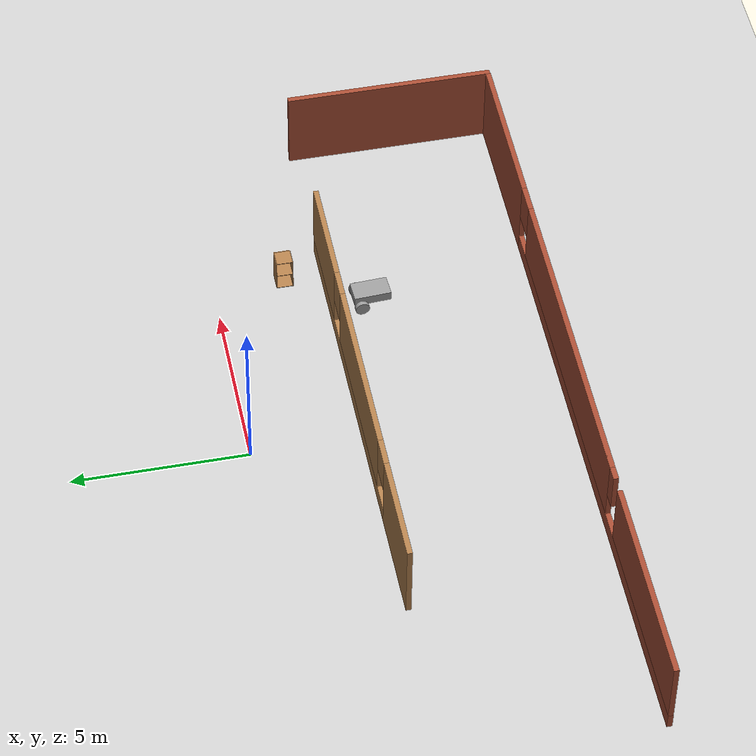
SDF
<sdf version="1.6">
 <world name="default">
  <model name="ground_plane">
   <static>1</static>
   <link name="link">
    <collision name="collision">
     <geometry><plane><normal>0 0 1</normal><size>100 100</size></plane></geometry>
     <surface>
      <contact><collide_bitmask>65535</collide_bitmask></contact>
      <friction><ode><mu>100</mu><mu2>50</mu2></ode></friction>
     </surface>
    </collision>
    <visual name="visual">
     <cast_shadows>0</cast_shadows>
     <geometry><plane><normal>0 0 1</normal><size>100 100</size></plane></geometry>
     <material>
      <script><uri>file://media/materials/scripts/gazebo.material</uri><name>Gazebo/Grey</name></script>
     </material>
    </visual>
   </link>
  </model>
  <model name="cart_0">
   <link name="link_0">
    <pose>0.000334 -0.065586 0.044669 0 -0 0</pose>
    <inertial>
     <mass>0.183478</mass>
     <inertia>
      <ixx>0.0186131</ixx>
      <ixy>0</ixy>
      <ixz>0</ixz>
      <iyy>0.00678768</iyy>
      <iyz>0</iyz>
      <izz>0.0228966</izz>
     </inertia>
    </inertial>
    <visual name="visual">
     <pose>0 0 0.2 0 -0 0</pose>
     <geometry><box><size>0.6017 1.06558 0.286166</size></box></geometry>
     <material>
      <lighting>1</lighting>
      <script><uri>file://media/materials/scripts/gazebo.material</uri><name>Gazebo/Grey</name></script>
      <shader type="pixel"><normal_map>__default__</normal_map></shader>
      <ambient>0.3 0.3 0.3 1</ambient>
      <diffuse>0.7 0.7 0.7 1</diffuse>
      <specular>0.01 0.01 0.01 1</specular>
      <emissive>0 0 0 1</emissive>
     </material>
    </visual>
    <collision name="collision">
     <pose>0 0 0.2 0 -0 0</pose>
     <geometry><box><size>0.6017 1.06558 0.286166</size></box></geometry>
     <surface>
      <friction>
       <ode><mu>1</mu><mu2>1</mu2><fdir1>0 0 0</fdir1><slip1>0</slip1><slip2>0</slip2></ode>
       <torsional>
        <coefficient>1</coefficient>
        <patch_radius>0</patch_radius>
        <surface_radius>0</surface_radius>
        <use_patch_radius>1</use_patch_radius>
        <ode><slip>0</slip></ode>
       </torsional>
      </friction>
      <bounce><restitution_coefficient>0</restitution_coefficient><threshold>1e+06</threshold></bounce>
      <contact>
       <collide_without_contact>0</collide_without_contact>
       <collide_without_contact_bitmask>1</collide_without_contact_bitmask>
       <collide_bitmask>1</collide_bitmask>
       <ode>
        <soft_cfm>0</soft_cfm>
        <soft_erp>0.2</soft_erp>
        <kp>1e+13</kp>
        <kd>1</kd>
        <max_vel>0.01</max_vel>
        <min_depth>0</min_depth>
       </ode>
       <bullet>
        <split_impulse>1</split_impulse>
        <split_impulse_penetration_threshold>-0.01</split_impulse_penetration_threshold>
        <soft_cfm>0</soft_cfm>
        <soft_erp>0.2</soft_erp>
        <kp>1e+13</kp>
        <kd>1</kd>
       </bullet>
      </contact>
     </surface>
    </collision>
   </link>
   <link name="link_1">
    <pose>-0.001 -0.462788 -0.129729 0 -0 0</pose>
    <inertial>
     <mass>1.886</mass>
     <inertia>
      <ixx>0.0115145</ixx>
      <ixy>0</ixy>
      <ixz>0</ixz>
      <iyy>0.0115145</iyy>
      <iyz>0</iyz>
      <izz>0.0115145</izz>
     </inertia>
     <pose>0 0 0.024704 0 -0 0</pose>
    </inertial>
    <visual name="visual">
     <pose>0 0 0.1 0 -0 0</pose>
     <geometry><sphere><radius>0.123544</radius></sphere></geometry>
     <material>
      <lighting>1</lighting>
      <script><uri>file://media/materials/scripts/gazebo.material</uri><name>Gazebo/Grey</name></script>
      <shader type="pixel"><normal_map>__default__</normal_map></shader>
      <ambient>0.3 0.3 0.3 1</ambient>
      <diffuse>0.7 0.7 0.7 1</diffuse>
      <specular>0.01 0.01 0.01 1</specular>
      <emissive>0 0 0 1</emissive>
     </material>
    </visual>
    <collision name="collision">
     <pose>0 0 0.1 0 -0 0</pose>
     <geometry><sphere><radius>0.123544</radius></sphere></geometry>
     <surface>
      <friction>
       <ode><mu>1</mu><mu2>1</mu2><fdir1>0 0 0</fdir1><slip1>0</slip1><slip2>0</slip2></ode>
       <torsional>
        <coefficient>1</coefficient>
        <patch_radius>0</patch_radius>
        <surface_radius>0</surface_radius>
        <use_patch_radius>1</use_patch_radius>
        <ode><slip>0</slip></ode>
       </torsional>
      </friction>
      <bounce><restitution_coefficient>0</restitution_coefficient><threshold>1e+06</threshold></bounce>
      <contact>
       <collide_without_contact>0</collide_without_contact>
       <collide_without_contact_bitmask>1</collide_without_contact_bitmask>
       <collide_bitmask>1</collide_bitmask>
       <ode>
        <soft_cfm>0</soft_cfm>
        <soft_erp>0.2</soft_erp>
        <kp>1e+13</kp>
        <kd>1</kd>
        <max_vel>0.01</max_vel>
        <min_depth>0</min_depth>
       </ode>
       <bullet>
        <split_impulse>1</split_impulse>
        <split_impulse_penetration_threshold>-0.01</split_impulse_penetration_threshold>
        <soft_cfm>0</soft_cfm>
        <soft_erp>0.2</soft_erp>
        <kp>1e+13</kp>
        <kd>1</kd>
       </bullet>
      </contact>
     </surface>
    </collision>
   </link>
   <link name="link_2">
    <pose>0.368986 0.26419 0.04253 3.14159 1.55999 3.14159</pose>
    <inertial>
     <mass>0.0216399</mass>
     <inertia>
      <ixx>0.000254029</ixx>
      <ixy>0</ixy>
      <ixz>0</ixz>
      <iyy>0.000254029</iyy>
      <iyz>0</iyz>
      <izz>0.000445951</izz>
     </inertia>
    </inertial>
    <visual name="visual">
     <geometry><cylinder><radius>0.203016</radius><length>0.131225</length></cylinder></geometry>
     <material>
      <lighting>1</lighting>
      <script><uri>file://media/materials/scripts/gazebo.material</uri><name>Gazebo/Grey</name></script>
      <shader type="pixel"><normal_map>__default__</normal_map></shader>
      <ambient>0.3 0.3 0.3 1</ambient>
      <diffuse>0.7 0.7 0.7 1</diffuse>
      <specular>0.01 0.01 0.01 1</specular>
      <emissive>0 0 0 1</emissive>
     </material>
    </visual>
    <collision name="collision">
     <geometry><cylinder><radius>0.203016</radius><length>0.131225</length></cylinder></geometry>
     <surface>
      <friction>
       <ode><mu>1</mu><mu2>1</mu2><fdir1>0 0 0</fdir1><slip1>0</slip1><slip2>0</slip2></ode>
       <torsional>
        <coefficient>1</coefficient>
        <patch_radius>0</patch_radius>
        <surface_radius>0</surface_radius>
        <use_patch_radius>1</use_patch_radius>
        <ode><slip>0</slip></ode>
       </torsional>
      </friction>
      <bounce><restitution_coefficient>0</restitution_coefficient><threshold>1e+06</threshold></bounce>
      <contact>
       <collide_without_contact>0</collide_without_contact>
       <collide_without_contact_bitmask>1</collide_without_contact_bitmask>
       <collide_bitmask>1</collide_bitmask>
       <ode>
        <soft_cfm>0</soft_cfm>
        <soft_erp>0.2</soft_erp>
        <kp>1e+13</kp>
        <kd>1</kd>
        <max_vel>0.01</max_vel>
        <min_depth>0</min_depth>
       </ode>
       <bullet>
        <split_impulse>1</split_impulse>
        <split_impulse_penetration_threshold>-0.01</split_impulse_penetration_threshold>
        <soft_cfm>0</soft_cfm>
        <soft_erp>0.2</soft_erp>
        <kp>1e+13</kp>
        <kd>1</kd>
       </bullet>
      </contact>
     </surface>
    </collision>
   </link>
   <link name="link_2_clone">
    <pose>-0.368319 0.26419 0.04253 3.14159 1.55999 3.14159</pose>
    <inertial>
     <mass>0.0216399</mass>
     <inertia>
      <ixx>0.000254029</ixx>
      <ixy>0</ixy>
      <ixz>0</ixz>
      <iyy>0.000254029</iyy>
      <iyz>0</iyz>
      <izz>0.000445951</izz>
     </inertia>
    </inertial>
    <visual name="visual">
     <geometry><cylinder><radius>0.203016</radius><length>0.131225</length></cylinder></geometry>
     <material>
      <lighting>1</lighting>
      <script><uri>file://media/materials/scripts/gazebo.material</uri><name>Gazebo/Grey</name></script>
      <shader type="pixel"><normal_map>__default__</normal_map></shader>
      <ambient>0.3 0.3 0.3 1</ambient>
      <diffuse>0.7 0.7 0.7 1</diffuse>
      <specular>0.01 0.01 0.01 1</specular>
      <emissive>0 0 0 1</emissive>
     </material>
    </visual>
    <collision name="collision">
     <geometry><cylinder><radius>0.203016</radius><length>0.131225</length></cylinder></geometry>
     <surface>
      <friction>
       <ode><mu>1</mu><mu2>1</mu2><fdir1>0 0 0</fdir1><slip1>0</slip1><slip2>0</slip2></ode>
       <torsional>
        <coefficient>1</coefficient>
        <patch_radius>0</patch_radius>
        <surface_radius>0</surface_radius>
        <use_patch_radius>1</use_patch_radius>
        <ode><slip>0</slip></ode>
       </torsional>
      </friction>
      <bounce><restitution_coefficient>0</restitution_coefficient><threshold>1e+06</threshold></bounce>
      <contact>
       <collide_without_contact>0</collide_without_contact>
       <collide_without_contact_bitmask>1</collide_without_contact_bitmask>
       <collide_bitmask>1</collide_bitmask>
       <ode>
        <soft_cfm>0</soft_cfm>
        <soft_erp>0.2</soft_erp>
        <kp>1e+13</kp>
        <kd>1</kd>
        <max_vel>0.01</max_vel>
        <min_depth>0</min_depth>
       </ode>
       <bullet>
        <split_impulse>1</split_impulse>
        <split_impulse_penetration_threshold>-0.01</split_impulse_penetration_threshold>
        <soft_cfm>0</soft_cfm>
        <soft_erp>0.2</soft_erp>
        <kp>1e+13</kp>
        <kd>1</kd>
       </bullet>
      </contact>
     </surface>
    </collision>
   </link>
   <joint name="link_0_JOINT_0" type="revolute">
    <parent>link_0</parent>
    <child>link_2</child>
    <axis>
     <xyz>0 0 1</xyz>
     <use_parent_model_frame>0</use_parent_model_frame>
     <limit>
      <lower>-1.79769e+308</lower>
      <upper>1.79769e+308</upper>
      <effort>-1</effort>
      <velocity>-1</velocity>
     </limit>
     <dynamics>
      <spring_reference>0</spring_reference>
      <spring_stiffness>0</spring_stiffness>
      <damping>0</damping>
     </dynamics>
    </axis>
    <physics>
     <ode><limit><cfm>0</cfm><erp>0.2</erp></limit><suspension><cfm>0</cfm><erp>0.2</erp></suspension></ode>
    </physics>
   </joint>
   <joint name="link_0_JOINT_1" type="revolute">
    <parent>link_0</parent>
    <child>link_2_clone</child>
    <axis>
     <xyz>0 0 1</xyz>
     <use_parent_model_frame>0</use_parent_model_frame>
     <limit>
      <lower>-1.79769e+308</lower>
      <upper>1.79769e+308</upper>
      <effort>-1</effort>
      <velocity>-1</velocity>
     </limit>
     <dynamics>
      <spring_reference>0</spring_reference>
      <spring_stiffness>0</spring_stiffness>
      <damping>0</damping>
     </dynamics>
    </axis>
    <physics>
     <ode><limit><cfm>0</cfm><erp>0.2</erp></limit><suspension><cfm>0</cfm><erp>0.2</erp></suspension></ode>
    </physics>
   </joint>
   <joint name="link_0_JOINT_2" type="ball">
    <parent>link_0</parent>
    <child>link_1</child>
    <physics>
     <ode><limit><cfm>0</cfm><erp>0.2</erp></limit><suspension><cfm>0</cfm><erp>0.2</erp></suspension></ode>
    </physics>
   </joint>
   <static>0</static>
   <pose>4.84327 -4.25238 0.158305 0.010889 1.1e-05 0.061046</pose>
  </model>
  <model name="cabinet">
   <static>1</static>
   <link name="cabinet_bottom_plate">
    <inertial>
     <pose>0 0 -1 0 -0 0</pose>
     <inertia><ixx>2.05</ixx><ixy>0</ixy><ixz>0</ixz><iyy>2.05</iyy><iyz>0</iyz><izz>2.05</izz></inertia>
     <mass>25</mass>
    </inertial>
    <collision name="cabinet_bottom_plate_geom">
     <pose>0 0 0.01 0 -0 0</pose>
     <geometry><box><size>0.45 0.45 0.02</size></box></geometry>
    </collision>
    <visual name="cabinet_bottom_plate_geom_visual">
     <pose>0 0 0.01 0 -0 0</pose>
     <geometry><box><size>0.45 0.45 0.02</size></box></geometry>
     <material>
      <script><uri>file://media/materials/scripts/gazebo.material</uri><name>Gazebo/Wood</name></script>
     </material>
    </visual>
    <collision name="cabinet_bottom_plate_geom_cabinet_back_plate">
     <pose>0.235 0 0.51 0 -0 0</pose>
     <geometry><box><size>0.02 0.45 1.02</size></box></geometry>
    </collision>
    <visual name="cabinet_bottom_plate_geom_cabinet_back_plate_visual">
     <pose>0.235 0 0.51 0 -0 0</pose>
     <geometry><box><size>0.02 0.45 1.02</size></box></geometry>
     <material>
      <script><uri>file://media/materials/scripts/gazebo.material</uri><name>Gazebo/Wood</name></script>
     </material>
    </visual>
    <collision name="cabinet_bottom_plate_geom_cabinet_left_plate">
     <pose>0 0.235 0.51 0 -0 0</pose>
     <geometry><box><size>0.45 0.02 1.02</size></box></geometry>
    </collision>
    <visual name="cabinet_bottom_plate_geom_cabinet_left_plate_visual">
     <pose>0 0.235 0.51 0 -0 0</pose>
     <geometry><box><size>0.45 0.02 1.02</size></box></geometry>
     <material>
      <script><uri>file://media/materials/scripts/gazebo.material</uri><name>Gazebo/Wood</name></script>
     </material>
    </visual>
    <collision name="cabinet_bottom_plate_geom_cabinet_middle_plate">
     <pose>0 0 0.51 0 -0 0</pose>
     <geometry><box><size>0.45 0.45 0.02</size></box></geometry>
    </collision>
    <visual name="cabinet_bottom_plate_geom_cabinet_middle_plate_visual">
     <pose>0 0 0.51 0 -0 0</pose>
     <geometry><box><size>0.45 0.45 0.02</size></box></geometry>
     <material>
      <script><uri>file://media/materials/scripts/gazebo.material</uri><name>Gazebo/Wood</name></script>
     </material>
    </visual>
    <collision name="cabinet_bottom_plate_geom_cabinet_right_plate">
     <pose>0 -0.235 0.51 0 -0 0</pose>
     <geometry><box><size>0.45 0.02 1.02</size></box></geometry>
    </collision>
    <visual name="cabinet_bottom_plate_geom_cabinet_right_plate_visual">
     <pose>0 -0.235 0.51 0 -0 0</pose>
     <geometry><box><size>0.45 0.02 1.02</size></box></geometry>
     <material>
      <script><uri>file://media/materials/scripts/gazebo.material</uri><name>Gazebo/Wood</name></script>
     </material>
    </visual>
    <collision name="cabinet_bottom_plate_geom_cabinet_top_plate">
     <pose>0 0 1.01 0 -0 0</pose>
     <geometry><box><size>0.45 0.45 0.02</size></box></geometry>
    </collision>
    <visual name="cabinet_bottom_plate_geom_cabinet_top_plate_visual">
     <pose>0 0 1.01 0 -0 0</pose>
     <geometry><box><size>0.45 0.45 0.02</size></box></geometry>
     <material>
      <script><uri>file://media/materials/scripts/gazebo.material</uri><name>Gazebo/Wood</name></script>
     </material>
    </visual>
   </link>
   <pose>6.0482 -2.03113 0 0 -0 0</pose>
  </model>
  <model name="office">
   <link name="Wall_15">
    <pose>10.5606 -5.72124 0 0 0 -1.5708</pose>
    <visual name="Wall_15_Visual">
     <pose>0 0 1.25 0 -0 0</pose>
     <geometry><box><size>6 0.15 2.5</size></box></geometry>
     <material>
      <script><uri>file://media/materials/scripts/gazebo.material</uri><name>Gazebo/Bricks</name></script>
      <ambient>0.435294 0.796078 0.67451 1</ambient>
      <shader type="pixel"/>
      <diffuse>1 1 1 1</diffuse>
      <specular>0.2 0.2 0.2 1</specular>
      <emissive>0 0 0 1</emissive>
     </material>
     <meta><layer>0</layer></meta>
    </visual>
    <collision name="Wall_15_Collision">
     <pose>0 0 1.25 0 -0 0</pose>
     <geometry><box><size>6 0.15 2.5</size></box></geometry>
     <surface>
      <friction>
       <ode><mu>1</mu><mu2>1</mu2><fdir1>0 0 0</fdir1><slip1>0</slip1><slip2>0</slip2></ode>
       <torsional>
        <coefficient>1</coefficient>
        <patch_radius>0</patch_radius>
        <surface_radius>0</surface_radius>
        <use_patch_radius>1</use_patch_radius>
        <ode><slip>0</slip></ode>
       </torsional>
      </friction>
      <bounce><restitution_coefficient>0</restitution_coefficient><threshold>1e+06</threshold></bounce>
      <contact>
       <collide_without_contact>0</collide_without_contact>
       <collide_without_contact_bitmask>1</collide_without_contact_bitmask>
       <collide_bitmask>1</collide_bitmask>
       <ode>
        <soft_cfm>0</soft_cfm>
        <soft_erp>0.2</soft_erp>
        <kp>1e+13</kp>
        <kd>1</kd>
        <max_vel>0.01</max_vel>
        <min_depth>0</min_depth>
       </ode>
       <bullet>
        <split_impulse>1</split_impulse>
        <split_impulse_penetration_threshold>-0.01</split_impulse_penetration_threshold>
        <soft_cfm>0</soft_cfm>
        <soft_erp>0.2</soft_erp>
        <kp>1e+13</kp>
        <kd>1</kd>
       </bullet>
      </contact>
     </surface>
    </collision>
   </link>
   <link name="Wall_16">
    <pose>-0.257157 -8.66079 0 0 -0 3.14159</pose>
    <inertial>
     <inertia><ixx>0</ixx><ixy>0</ixy><ixz>0</ixz><iyy>0</iyy><iyz>0</iyz><izz>0</izz></inertia>
     <mass>0</mass>
    </inertial>
    <visual name="Wall_16_Visual_5">
     <pose>4.13509 0 1.9 0 -0 0</pose>
     <geometry><box><size>0.801337 0.15 1.2</size></box></geometry>
     <material>
      <script><uri>file://media/materials/scripts/gazebo.material</uri><name>Gazebo/Bricks</name></script>
      <ambient>0.435294 0.796078 0.67451 1</ambient>
      <shader type="pixel"/>
      <diffuse>1 1 1 1</diffuse>
      <specular>0.2 0.2 0.2 1</specular>
      <emissive>0 0 0 1</emissive>
     </material>
     <meta><layer>0</layer></meta>
    </visual>
    <visual name="Wall_16_Visual_0">
     <pose>-8.41899 0 1.25 0 -0 0</pose>
     <geometry><box><size>4.66983 0.15 2.5</size></box></geometry>
     <material>
      <script><uri>file://media/materials/scripts/gazebo.material</uri><name>Gazebo/Bricks</name></script>
      <ambient>0.435294 0.796078 0.67451 1</ambient>
      <shader type="pixel"/>
      <diffuse>1 1 1 1</diffuse>
      <specular>0.2 0.2 0.2 1</specular>
      <emissive>0 0 0 1</emissive>
     </material>
     <meta><layer>0</layer></meta>
    </visual>
    <visual name="Wall_16_Visual_3">
     <pose>7.84255 0 1.5 0 -0 0</pose>
     <geometry><box><size>5.82463 0.15 2</size></box></geometry>
     <material>
      <script><uri>file://media/materials/scripts/gazebo.material</uri><name>Gazebo/Bricks</name></script>
      <ambient>0.435294 0.796078 0.67451 1</ambient>
      <shader type="pixel"/>
      <diffuse>1 1 1 1</diffuse>
      <specular>0.2 0.2 0.2 1</specular>
      <emissive>0 0 0 1</emissive>
     </material>
     <meta><layer>0</layer></meta>
    </visual>
    <visual name="Wall_16_Visual_4">
     <pose>-5.68797 0 1.9 0 -0 0</pose>
     <geometry><box><size>0.801337 0.15 1.2</size></box></geometry>
     <material>
      <script><uri>file://media/materials/scripts/gazebo.material</uri><name>Gazebo/Bricks</name></script>
      <ambient>0.435294 0.796078 0.67451 1</ambient>
      <shader type="pixel"/>
      <diffuse>1 1 1 1</diffuse>
      <specular>0.2 0.2 0.2 1</specular>
      <emissive>0 0 0 1</emissive>
     </material>
     <meta><layer>0</layer></meta>
    </visual>
    <visual name="Wall_16_Visual_2">
     <pose>-0.576441 0 1.5 0 -0 0</pose>
     <geometry><box><size>9.43881 0.15 2</size></box></geometry>
     <material>
      <script><uri>file://media/materials/scripts/gazebo.material</uri><name>Gazebo/Bricks</name></script>
      <ambient>0.435294 0.796078 0.67451 1</ambient>
      <shader type="pixel"/>
      <diffuse>1 1 1 1</diffuse>
      <specular>0.2 0.2 0.2 1</specular>
      <emissive>0 0 0 1</emissive>
     </material>
     <meta><layer>0</layer></meta>
    </visual>
    <visual name="Wall_16_Visual_1">
     <pose>2.33101 0 0.25 0 -0 0</pose>
     <geometry><box><size>16.8662 0.15 0.5</size></box></geometry>
     <material>
      <script><uri>file://media/materials/scripts/gazebo.material</uri><name>Gazebo/Bricks</name></script>
      <ambient>0.435294 0.796078 0.67451 1</ambient>
      <shader type="pixel"/>
      <diffuse>1 1 1 1</diffuse>
      <specular>0.2 0.2 0.2 1</specular>
      <emissive>0 0 0 1</emissive>
     </material>
     <meta><layer>0</layer></meta>
    </visual>
    <collision name="Wall_16_Collision_0">
     <pose>-8.41899 0 1.25 0 -0 0</pose>
     <geometry><box><size>4.66983 0.15 2.5</size></box></geometry>
     <surface>
      <friction>
       <ode><mu>1</mu><mu2>1</mu2><fdir1>0 0 0</fdir1><slip1>0</slip1><slip2>0</slip2></ode>
       <torsional>
        <coefficient>1</coefficient>
        <patch_radius>0</patch_radius>
        <surface_radius>0</surface_radius>
        <use_patch_radius>1</use_patch_radius>
        <ode><slip>0</slip></ode>
       </torsional>
      </friction>
      <bounce><restitution_coefficient>0</restitution_coefficient><threshold>1e+06</threshold></bounce>
      <contact>
       <collide_without_contact>0</collide_without_contact>
       <collide_without_contact_bitmask>1</collide_without_contact_bitmask>
       <collide_bitmask>1</collide_bitmask>
       <ode>
        <soft_cfm>0</soft_cfm>
        <soft_erp>0.2</soft_erp>
        <kp>1e+13</kp>
        <kd>1</kd>
        <max_vel>0.01</max_vel>
        <min_depth>0</min_depth>
       </ode>
       <bullet>
        <split_impulse>1</split_impulse>
        <split_impulse_penetration_threshold>-0.01</split_impulse_penetration_threshold>
        <soft_cfm>0</soft_cfm>
        <soft_erp>0.2</soft_erp>
        <kp>1e+13</kp>
        <kd>1</kd>
       </bullet>
      </contact>
     </surface>
    </collision>
    <collision name="Wall_16_Collision_4">
     <pose>-5.68797 0 1.9 0 -0 0</pose>
     <geometry><box><size>0.801337 0.15 1.2</size></box></geometry>
     <surface>
      <friction>
       <ode><mu>1</mu><mu2>1</mu2><fdir1>0 0 0</fdir1><slip1>0</slip1><slip2>0</slip2></ode>
       <torsional>
        <coefficient>1</coefficient>
        <patch_radius>0</patch_radius>
        <surface_radius>0</surface_radius>
        <use_patch_radius>1</use_patch_radius>
        <ode><slip>0</slip></ode>
       </torsional>
      </friction>
      <bounce><restitution_coefficient>0</restitution_coefficient><threshold>1e+06</threshold></bounce>
      <contact>
       <collide_without_contact>0</collide_without_contact>
       <collide_without_contact_bitmask>1</collide_without_contact_bitmask>
       <collide_bitmask>1</collide_bitmask>
       <ode>
        <soft_cfm>0</soft_cfm>
        <soft_erp>0.2</soft_erp>
        <kp>1e+13</kp>
        <kd>1</kd>
        <max_vel>0.01</max_vel>
        <min_depth>0</min_depth>
       </ode>
       <bullet>
        <split_impulse>1</split_impulse>
        <split_impulse_penetration_threshold>-0.01</split_impulse_penetration_threshold>
        <soft_cfm>0</soft_cfm>
        <soft_erp>0.2</soft_erp>
        <kp>1e+13</kp>
        <kd>1</kd>
       </bullet>
      </contact>
     </surface>
    </collision>
    <collision name="Wall_16_Collision_2">
     <pose>-0.576441 0 1.5 0 -0 0</pose>
     <geometry><box><size>9.43881 0.15 2</size></box></geometry>
     <surface>
      <friction>
       <ode><mu>1</mu><mu2>1</mu2><fdir1>0 0 0</fdir1><slip1>0</slip1><slip2>0</slip2></ode>
       <torsional>
        <coefficient>1</coefficient>
        <patch_radius>0</patch_radius>
        <surface_radius>0</surface_radius>
        <use_patch_radius>1</use_patch_radius>
        <ode><slip>0</slip></ode>
       </torsional>
      </friction>
      <bounce><restitution_coefficient>0</restitution_coefficient><threshold>1e+06</threshold></bounce>
      <contact>
       <collide_without_contact>0</collide_without_contact>
       <collide_without_contact_bitmask>1</collide_without_contact_bitmask>
       <collide_bitmask>1</collide_bitmask>
       <ode>
        <soft_cfm>0</soft_cfm>
        <soft_erp>0.2</soft_erp>
        <kp>1e+13</kp>
        <kd>1</kd>
        <max_vel>0.01</max_vel>
        <min_depth>0</min_depth>
       </ode>
       <bullet>
        <split_impulse>1</split_impulse>
        <split_impulse_penetration_threshold>-0.01</split_impulse_penetration_threshold>
        <soft_cfm>0</soft_cfm>
        <soft_erp>0.2</soft_erp>
        <kp>1e+13</kp>
        <kd>1</kd>
       </bullet>
      </contact>
     </surface>
    </collision>
    <collision name="Wall_16_Collision_1">
     <pose>2.33101 0 0.25 0 -0 0</pose>
     <geometry><box><size>16.8662 0.15 0.5</size></box></geometry>
     <surface>
      <friction>
       <ode><mu>1</mu><mu2>1</mu2><fdir1>0 0 0</fdir1><slip1>0</slip1><slip2>0</slip2></ode>
       <torsional>
        <coefficient>1</coefficient>
        <patch_radius>0</patch_radius>
        <surface_radius>0</surface_radius>
        <use_patch_radius>1</use_patch_radius>
        <ode><slip>0</slip></ode>
       </torsional>
      </friction>
      <bounce><restitution_coefficient>0</restitution_coefficient><threshold>1e+06</threshold></bounce>
      <contact>
       <collide_without_contact>0</collide_without_contact>
       <collide_without_contact_bitmask>1</collide_without_contact_bitmask>
       <collide_bitmask>1</collide_bitmask>
       <ode>
        <soft_cfm>0</soft_cfm>
        <soft_erp>0.2</soft_erp>
        <kp>1e+13</kp>
        <kd>1</kd>
        <max_vel>0.01</max_vel>
        <min_depth>0</min_depth>
       </ode>
       <bullet>
        <split_impulse>1</split_impulse>
        <split_impulse_penetration_threshold>-0.01</split_impulse_penetration_threshold>
        <soft_cfm>0</soft_cfm>
        <soft_erp>0.2</soft_erp>
        <kp>1e+13</kp>
        <kd>1</kd>
       </bullet>
      </contact>
     </surface>
    </collision>
    <collision name="Wall_16_Collision_3">
     <pose>7.84255 0 1.5 0 -0 0</pose>
     <geometry><box><size>5.82463 0.15 2</size></box></geometry>
     <surface>
      <friction>
       <ode><mu>1</mu><mu2>1</mu2><fdir1>0 0 0</fdir1><slip1>0</slip1><slip2>0</slip2></ode>
       <torsional>
        <coefficient>1</coefficient>
        <patch_radius>0</patch_radius>
        <surface_radius>0</surface_radius>
        <use_patch_radius>1</use_patch_radius>
        <ode><slip>0</slip></ode>
       </torsional>
      </friction>
      <bounce><restitution_coefficient>0</restitution_coefficient><threshold>1e+06</threshold></bounce>
      <contact>
       <collide_without_contact>0</collide_without_contact>
       <collide_without_contact_bitmask>1</collide_without_contact_bitmask>
       <collide_bitmask>1</collide_bitmask>
       <ode>
        <soft_cfm>0</soft_cfm>
        <soft_erp>0.2</soft_erp>
        <kp>1e+13</kp>
        <kd>1</kd>
        <max_vel>0.01</max_vel>
        <min_depth>0</min_depth>
       </ode>
       <bullet>
        <split_impulse>1</split_impulse>
        <split_impulse_penetration_threshold>-0.01</split_impulse_penetration_threshold>
        <soft_cfm>0</soft_cfm>
        <soft_erp>0.2</soft_erp>
        <kp>1e+13</kp>
        <kd>1</kd>
       </bullet>
      </contact>
     </surface>
    </collision>
    <collision name="Wall_16_Collision_5">
     <pose>4.13509 0 1.9 0 -0 0</pose>
     <geometry><box><size>0.801337 0.15 1.2</size></box></geometry>
     <surface>
      <friction>
       <ode><mu>1</mu><mu2>1</mu2><fdir1>0 0 0</fdir1><slip1>0</slip1><slip2>0</slip2></ode>
       <torsional>
        <coefficient>1</coefficient>
        <patch_radius>0</patch_radius>
        <surface_radius>0</surface_radius>
        <use_patch_radius>1</use_patch_radius>
        <ode><slip>0</slip></ode>
       </torsional>
      </friction>
      <bounce><restitution_coefficient>0</restitution_coefficient><threshold>1e+06</threshold></bounce>
      <contact>
       <collide_without_contact>0</collide_without_contact>
       <collide_without_contact_bitmask>1</collide_without_contact_bitmask>
       <collide_bitmask>1</collide_bitmask>
       <ode>
        <soft_cfm>0</soft_cfm>
        <soft_erp>0.2</soft_erp>
        <kp>1e+13</kp>
        <kd>1</kd>
        <max_vel>0.01</max_vel>
        <min_depth>0</min_depth>
       </ode>
       <bullet>
        <split_impulse>1</split_impulse>
        <split_impulse_penetration_threshold>-0.01</split_impulse_penetration_threshold>
        <soft_cfm>0</soft_cfm>
        <soft_erp>0.2</soft_erp>
        <kp>1e+13</kp>
        <kd>1</kd>
       </bullet>
      </contact>
     </surface>
    </collision>
   </link>
   <link name="Wall_23">
    <pose>0.357662 -2.83979 0 0 -0 0</pose>
    <visual name="Wall_23_Visual_0">
     <pose>-4.98806 0 1.25 0 -0 0</pose>
     <geometry><box><size>3.02388 0.15 2.5</size></box></geometry>
     <material>
      <script><uri>file://media/materials/scripts/gazebo.material</uri><name>Gazebo/Wood</name></script>
      <ambient>0.435294 0.796078 0.67451 1</ambient>
      <shader type="pixel"/>
      <diffuse>1 1 1 1</diffuse>
      <specular>0.2 0.2 0.2 1</specular>
      <emissive>0 0 0 1</emissive>
     </material>
     <meta><layer>0</layer></meta>
    </visual>
    <visual name="Wall_23_Visual_1">
     <pose>1.51194 0 0.25 0 -0 0</pose>
     <geometry><box><size>9.97612 0.15 0.5</size></box></geometry>
     <material>
      <script><uri>file://media/materials/scripts/gazebo.material</uri><name>Gazebo/Wood</name></script>
      <ambient>0.435294 0.796078 0.67451 1</ambient>
      <shader type="pixel"/>
      <diffuse>1 1 1 1</diffuse>
      <specular>0.2 0.2 0.2 1</specular>
      <emissive>0 0 0 1</emissive>
     </material>
     <meta><layer>0</layer></meta>
    </visual>
    <visual name="Wall_23_Visual_2">
     <pose>-0.051543 0 1.5 0 -0 0</pose>
     <geometry><box><size>5.24915 0.15 2</size></box></geometry>
     <material>
      <script><uri>file://media/materials/scripts/gazebo.material</uri><name>Gazebo/Wood</name></script>
      <ambient>0.435294 0.796078 0.67451 1</ambient>
      <shader type="pixel"/>
      <diffuse>1 1 1 1</diffuse>
      <specular>0.2 0.2 0.2 1</specular>
      <emissive>0 0 0 1</emissive>
     </material>
     <meta><layer>0</layer></meta>
    </visual>
    <visual name="Wall_23_Visual_3">
     <pose>4.93652 0 1.5 0 -0 0</pose>
     <geometry><box><size>3.12697 0.15 2</size></box></geometry>
     <material>
      <script><uri>file://media/materials/scripts/gazebo.material</uri><name>Gazebo/Wood</name></script>
      <ambient>0.435294 0.796078 0.67451 1</ambient>
      <shader type="pixel"/>
      <diffuse>1 1 1 1</diffuse>
      <specular>0.2 0.2 0.2 1</specular>
      <emissive>0 0 0 1</emissive>
     </material>
     <meta><layer>0</layer></meta>
    </visual>
    <visual name="Wall_23_Visual_4">
     <pose>-3.07612 0 1.9 0 -0 0</pose>
     <geometry><box><size>0.8 0.15 1.2</size></box></geometry>
     <material>
      <script><uri>file://media/materials/scripts/gazebo.material</uri><name>Gazebo/Wood</name></script>
      <ambient>0.435294 0.796078 0.67451 1</ambient>
      <shader type="pixel"/>
      <diffuse>1 1 1 1</diffuse>
      <specular>0.2 0.2 0.2 1</specular>
      <emissive>0 0 0 1</emissive>
     </material>
     <meta><layer>0</layer></meta>
    </visual>
    <visual name="Wall_23_Visual_5">
     <pose>2.97303 0 1.9 0 -0 0</pose>
     <geometry><box><size>0.8 0.15 1.2</size></box></geometry>
     <material>
      <script><uri>file://media/materials/scripts/gazebo.material</uri><name>Gazebo/Wood</name></script>
      <ambient>0.435294 0.796078 0.67451 1</ambient>
      <shader type="pixel"/>
      <diffuse>1 1 1 1</diffuse>
      <specular>0.2 0.2 0.2 1</specular>
      <emissive>0 0 0 1</emissive>
     </material>
     <meta><layer>0</layer></meta>
    </visual>
    <collision name="Wall_23_Collision_0">
     <pose>-4.98806 0 1.25 0 -0 0</pose>
     <geometry><box><size>3.02388 0.15 2.5</size></box></geometry>
     <surface>
      <friction>
       <ode><mu>1</mu><mu2>1</mu2><fdir1>0 0 0</fdir1><slip1>0</slip1><slip2>0</slip2></ode>
       <torsional>
        <coefficient>1</coefficient>
        <patch_radius>0</patch_radius>
        <surface_radius>0</surface_radius>
        <use_patch_radius>1</use_patch_radius>
        <ode><slip>0</slip></ode>
       </torsional>
      </friction>
      <bounce><restitution_coefficient>0</restitution_coefficient><threshold>1e+06</threshold></bounce>
      <contact>
       <collide_without_contact>0</collide_without_contact>
       <collide_without_contact_bitmask>1</collide_without_contact_bitmask>
       <collide_bitmask>1</collide_bitmask>
       <ode>
        <soft_cfm>0</soft_cfm>
        <soft_erp>0.2</soft_erp>
        <kp>1e+13</kp>
        <kd>1</kd>
        <max_vel>0.01</max_vel>
        <min_depth>0</min_depth>
       </ode>
       <bullet>
        <split_impulse>1</split_impulse>
        <split_impulse_penetration_threshold>-0.01</split_impulse_penetration_threshold>
        <soft_cfm>0</soft_cfm>
        <soft_erp>0.2</soft_erp>
        <kp>1e+13</kp>
        <kd>1</kd>
       </bullet>
      </contact>
     </surface>
    </collision>
    <collision name="Wall_23_Collision_1">
     <pose>1.51194 0 0.25 0 -0 0</pose>
     <geometry><box><size>9.97612 0.15 0.5</size></box></geometry>
     <surface>
      <friction>
       <ode><mu>1</mu><mu2>1</mu2><fdir1>0 0 0</fdir1><slip1>0</slip1><slip2>0</slip2></ode>
       <torsional>
        <coefficient>1</coefficient>
        <patch_radius>0</patch_radius>
        <surface_radius>0</surface_radius>
        <use_patch_radius>1</use_patch_radius>
        <ode><slip>0</slip></ode>
       </torsional>
      </friction>
      <bounce><restitution_coefficient>0</restitution_coefficient><threshold>1e+06</threshold></bounce>
      <contact>
       <collide_without_contact>0</collide_without_contact>
       <collide_without_contact_bitmask>1</collide_without_contact_bitmask>
       <collide_bitmask>1</collide_bitmask>
       <ode>
        <soft_cfm>0</soft_cfm>
        <soft_erp>0.2</soft_erp>
        <kp>1e+13</kp>
        <kd>1</kd>
        <max_vel>0.01</max_vel>
        <min_depth>0</min_depth>
       </ode>
       <bullet>
        <split_impulse>1</split_impulse>
        <split_impulse_penetration_threshold>-0.01</split_impulse_penetration_threshold>
        <soft_cfm>0</soft_cfm>
        <soft_erp>0.2</soft_erp>
        <kp>1e+13</kp>
        <kd>1</kd>
       </bullet>
      </contact>
     </surface>
    </collision>
    <collision name="Wall_23_Collision_2">
     <pose>-0.051543 0 1.5 0 -0 0</pose>
     <geometry><box><size>5.24915 0.15 2</size></box></geometry>
     <surface>
      <friction>
       <ode><mu>1</mu><mu2>1</mu2><fdir1>0 0 0</fdir1><slip1>0</slip1><slip2>0</slip2></ode>
       <torsional>
        <coefficient>1</coefficient>
        <patch_radius>0</patch_radius>
        <surface_radius>0</surface_radius>
        <use_patch_radius>1</use_patch_radius>
        <ode><slip>0</slip></ode>
       </torsional>
      </friction>
      <bounce><restitution_coefficient>0</restitution_coefficient><threshold>1e+06</threshold></bounce>
      <contact>
       <collide_without_contact>0</collide_without_contact>
       <collide_without_contact_bitmask>1</collide_without_contact_bitmask>
       <collide_bitmask>1</collide_bitmask>
       <ode>
        <soft_cfm>0</soft_cfm>
        <soft_erp>0.2</soft_erp>
        <kp>1e+13</kp>
        <kd>1</kd>
        <max_vel>0.01</max_vel>
        <min_depth>0</min_depth>
       </ode>
       <bullet>
        <split_impulse>1</split_impulse>
        <split_impulse_penetration_threshold>-0.01</split_impulse_penetration_threshold>
        <soft_cfm>0</soft_cfm>
        <soft_erp>0.2</soft_erp>
        <kp>1e+13</kp>
        <kd>1</kd>
       </bullet>
      </contact>
     </surface>
    </collision>
    <collision name="Wall_23_Collision_3">
     <pose>4.93652 0 1.5 0 -0 0</pose>
     <geometry><box><size>3.12697 0.15 2</size></box></geometry>
     <surface>
      <friction>
       <ode><mu>1</mu><mu2>1</mu2><fdir1>0 0 0</fdir1><slip1>0</slip1><slip2>0</slip2></ode>
       <torsional>
        <coefficient>1</coefficient>
        <patch_radius>0</patch_radius>
        <surface_radius>0</surface_radius>
        <use_patch_radius>1</use_patch_radius>
        <ode><slip>0</slip></ode>
       </torsional>
      </friction>
      <bounce><restitution_coefficient>0</restitution_coefficient><threshold>1e+06</threshold></bounce>
      <contact>
       <collide_without_contact>0</collide_without_contact>
       <collide_without_contact_bitmask>1</collide_without_contact_bitmask>
       <collide_bitmask>1</collide_bitmask>
       <ode>
        <soft_cfm>0</soft_cfm>
        <soft_erp>0.2</soft_erp>
        <kp>1e+13</kp>
        <kd>1</kd>
        <max_vel>0.01</max_vel>
        <min_depth>0</min_depth>
       </ode>
       <bullet>
        <split_impulse>1</split_impulse>
        <split_impulse_penetration_threshold>-0.01</split_impulse_penetration_threshold>
        <soft_cfm>0</soft_cfm>
        <soft_erp>0.2</soft_erp>
        <kp>1e+13</kp>
        <kd>1</kd>
       </bullet>
      </contact>
     </surface>
    </collision>
    <collision name="Wall_23_Collision_4">
     <pose>-3.07612 0 1.9 0 -0 0</pose>
     <geometry><box><size>0.8 0.15 1.2</size></box></geometry>
     <surface>
      <friction>
       <ode><mu>1</mu><mu2>1</mu2><fdir1>0 0 0</fdir1><slip1>0</slip1><slip2>0</slip2></ode>
       <torsional>
        <coefficient>1</coefficient>
        <patch_radius>0</patch_radius>
        <surface_radius>0</surface_radius>
        <use_patch_radius>1</use_patch_radius>
        <ode><slip>0</slip></ode>
       </torsional>
      </friction>
      <bounce><restitution_coefficient>0</restitution_coefficient><threshold>1e+06</threshold></bounce>
      <contact>
       <collide_without_contact>0</collide_without_contact>
       <collide_without_contact_bitmask>1</collide_without_contact_bitmask>
       <collide_bitmask>1</collide_bitmask>
       <ode>
        <soft_cfm>0</soft_cfm>
        <soft_erp>0.2</soft_erp>
        <kp>1e+13</kp>
        <kd>1</kd>
        <max_vel>0.01</max_vel>
        <min_depth>0</min_depth>
       </ode>
       <bullet>
        <split_impulse>1</split_impulse>
        <split_impulse_penetration_threshold>-0.01</split_impulse_penetration_threshold>
        <soft_cfm>0</soft_cfm>
        <soft_erp>0.2</soft_erp>
        <kp>1e+13</kp>
        <kd>1</kd>
       </bullet>
      </contact>
     </surface>
    </collision>
    <collision name="Wall_23_Collision_5">
     <pose>2.97303 0 1.9 0 -0 0</pose>
     <geometry><box><size>0.8 0.15 1.2</size></box></geometry>
     <surface>
      <friction>
       <ode><mu>1</mu><mu2>1</mu2><fdir1>0 0 0</fdir1><slip1>0</slip1><slip2>0</slip2></ode>
       <torsional>
        <coefficient>1</coefficient>
        <patch_radius>0</patch_radius>
        <surface_radius>0</surface_radius>
        <use_patch_radius>1</use_patch_radius>
        <ode><slip>0</slip></ode>
       </torsional>
      </friction>
      <bounce><restitution_coefficient>0</restitution_coefficient><threshold>1e+06</threshold></bounce>
      <contact>
       <collide_without_contact>0</collide_without_contact>
       <collide_without_contact_bitmask>1</collide_without_contact_bitmask>
       <collide_bitmask>1</collide_bitmask>
       <ode>
        <soft_cfm>0</soft_cfm>
        <soft_erp>0.2</soft_erp>
        <kp>1e+13</kp>
        <kd>1</kd>
        <max_vel>0.01</max_vel>
        <min_depth>0</min_depth>
       </ode>
       <bullet>
        <split_impulse>1</split_impulse>
        <split_impulse_penetration_threshold>-0.01</split_impulse_penetration_threshold>
        <soft_cfm>0</soft_cfm>
        <soft_erp>0.2</soft_erp>
        <kp>1e+13</kp>
        <kd>1</kd>
       </bullet>
      </contact>
     </surface>
    </collision>
   </link>
   <static>1</static>
   <pose>0.19118 -0.3324 0 0 -0 0</pose>
  </model>
 </world>
</sdf>
